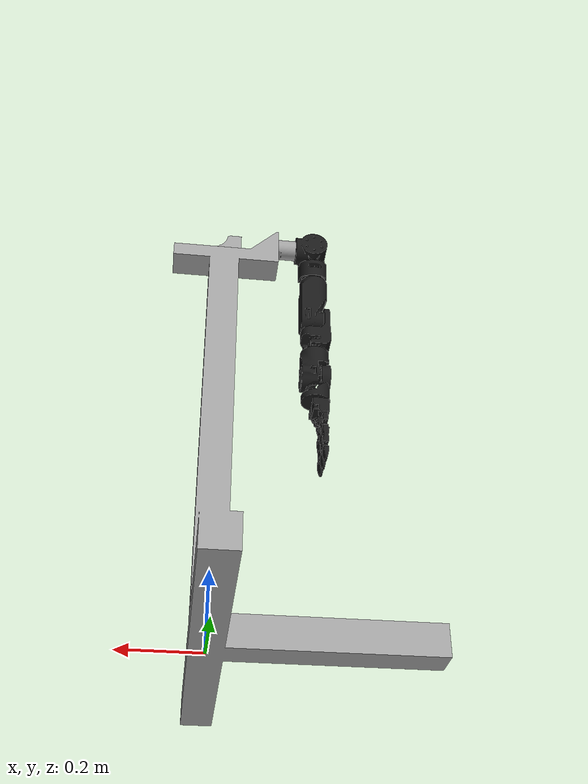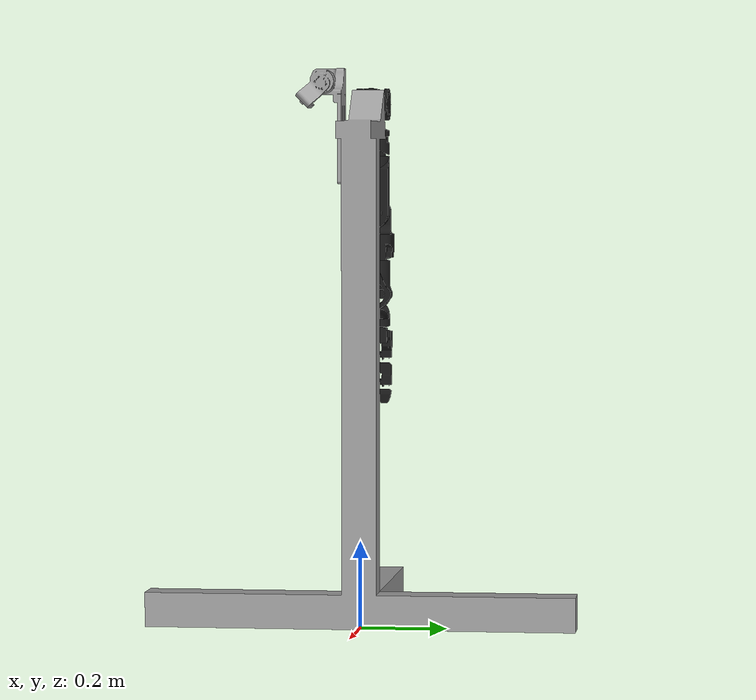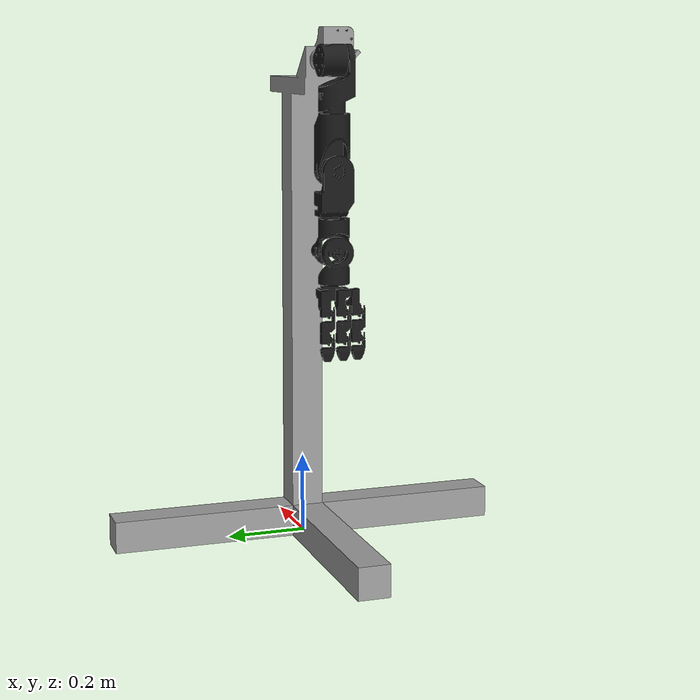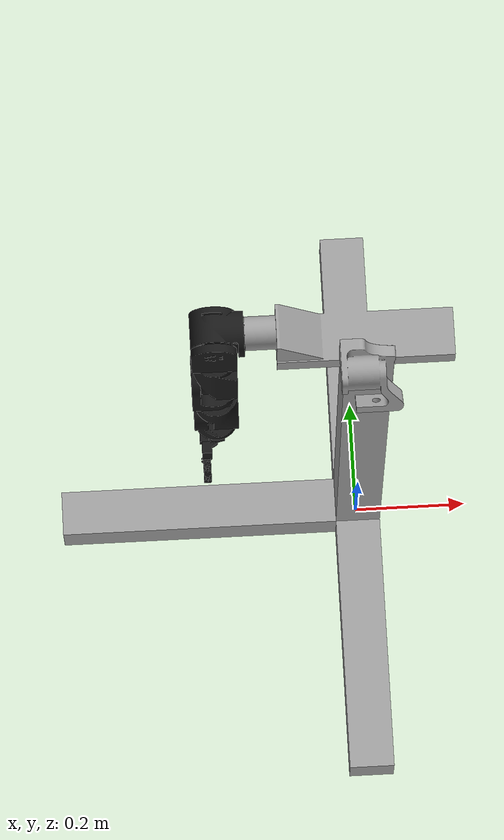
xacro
<?xml version="1.0"?>
<robot xmlns:xacro="http://www.ros.org/wiki/xacro" name="JAXV3_Assembly">

  <!-- Materials (shared across all assemblies) -->
  <material name="Steel">
    <color rgba="0.627 0.627 0.627 1.0"/>
  </material>
  <material name="Acetal_Resin_White">
    <color rgba="0.098 0.098 0.098 1.0"/>
  </material>
  <material name="Generic">
    <color rgba="0.098 0.098 0.098 1.0"/>
  </material>

  <!-- Assembly includes -->
  <xacro:include filename="$(find JAXV3_Assembly_description)/urdf/assemblies/JAXV3_Assembly.urdf.xacro"/>

  <!-- Instantiate assemblies -->
  <xacro:JAXV3_Assembly prefix=""/>

</robot>

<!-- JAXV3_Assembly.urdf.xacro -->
<robot xmlns:xacro="http://www.ros.org/wiki/xacro" name="JAXV3_Assembly_macro">

  <xacro:macro name="JAXV3_Assembly" params="prefix">

    <!-- Links -->
    <link name="${prefix}base_link">
      <inertial>
        <origin xyz="-0.055017 0.000000 0.331791" rpy="0 0 0"/>
        <mass value="137.266081"/>
        <inertia ixx="2.575008e+01" ixy="0.000000e+00" ixz="-1.895989e+00"
                 iyy="2.387286e+01" iyz="0.000000e+00" izz="6.588692e+00"/>
      </inertial>
      <visual>
        <origin xyz="0.000000 0.000000 0.000000" rpy="0.000000 0.000000 0.000000"/>
        <geometry>
          <mesh filename="package://JAXV3_Assembly_description/meshes/JAXV3_Assembly/base_link.dae" scale="1 1 1"/>
        </geometry>
        <material name="Steel"/>
      </visual>
      <collision>
        <origin xyz="0.000000 0.000000 0.000000" rpy="0.000000 0.000000 0.000000"/>
        <geometry>
          <mesh filename="package://JAXV3_Assembly_description/meshes/JAXV3_Assembly/base_link_collision.stl" scale="0.01 0.01 0.01"/>
        </geometry>
      </collision>
    </link>

    <link name="${prefix}Shoulder_Pitch_1">
      <inertial>
        <origin xyz="-0.025919 0.000000 0.000254" rpy="0 0 0"/>
        <mass value="0.945323"/>
        <inertia ixx="3.526088e-04" ixy="0.000000e+00" ixz="-4.945399e-06"
                 iyy="3.789174e-04" iyz="0.000000e+00" izz="3.842486e-04"/>
      </inertial>
      <visual>
        <origin xyz="0.000000 0.000000 0.000000" rpy="0.000000 0.000000 0.000000"/>
        <geometry>
          <mesh filename="package://JAXV3_Assembly_description/meshes/JAXV3_Assembly/Shoulder_Pitch_1.dae" scale="1 1 1"/>
        </geometry>
        <material name="Steel"/>
      </visual>
      <collision>
        <origin xyz="0.000000 0.000000 0.000000" rpy="0.000000 0.000000 0.000000"/>
        <geometry>
          <mesh filename="package://JAXV3_Assembly_description/meshes/JAXV3_Assembly/Shoulder_Pitch_1_collision.stl" scale="0.01 0.01 0.01"/>
        </geometry>
      </collision>
    </link>

    <link name="${prefix}Holder_1">
      <inertial>
        <origin xyz="0.191681 -0.014898 0.032704" rpy="0 0 0"/>
        <mass value="3.331140"/>
        <inertia ixx="1.734710e-02" ixy="1.486348e-03" ixz="-2.128939e-04"
                 iyy="4.873273e-03" iyz="-2.937509e-03" izz="1.666697e-02"/>
      </inertial>
      <visual>
        <origin xyz="0.000000 0.000000 0.000000" rpy="0.000000 0.000000 0.000000"/>
        <geometry>
          <mesh filename="package://JAXV3_Assembly_description/meshes/JAXV3_Assembly/Holder_1.dae" scale="1 1 1"/>
        </geometry>
        <material name="Steel"/>
      </visual>
      <collision>
        <origin xyz="0.000000 0.000000 0.000000" rpy="0.000000 0.000000 0.000000"/>
        <geometry>
          <mesh filename="package://JAXV3_Assembly_description/meshes/JAXV3_Assembly/Holder_1_collision.stl" scale="0.01 0.01 0.01"/>
        </geometry>
      </collision>
    </link>

    <link name="${prefix}Shoulder_Roll_1">
      <inertial>
        <origin xyz="0.006736 -0.000116 0.041627" rpy="0 0 0"/>
        <mass value="0.262799"/>
        <inertia ixx="2.438658e-04" ixy="4.725397e-07" ixz="-9.712209e-06"
                 iyy="2.386309e-04" iyz="2.560602e-07" izz="1.815925e-04"/>
      </inertial>
      <visual>
        <origin xyz="0.000000 0.000000 0.000000" rpy="1.570796 1.570796 0.000000"/>
        <geometry>
          <mesh filename="package://JAXV3_Assembly_description/meshes/JAXV3_Assembly/Shoulder_Roll_1.dae" scale="1 1 1"/>
        </geometry>
        <material name="Acetal_Resin_White"/>
      </visual>
      <collision>
        <origin xyz="0.000000 0.000000 0.000000" rpy="1.570796 1.570796 0.000000"/>
        <geometry>
          <mesh filename="package://JAXV3_Assembly_description/meshes/JAXV3_Assembly/Shoulder_Roll_1_collision.stl" scale="0.01 0.01 0.01"/>
        </geometry>
      </collision>
    </link>

    <link name="${prefix}Shoulder_Yaw_1">
      <inertial>
        <origin xyz="-0.000000 -0.066867 -0.014142" rpy="0 0 0"/>
        <mass value="0.320456"/>
        <inertia ixx="6.510216e-04" ixy="1.467003e-11" ixz="8.632501e-12"
                 iyy="2.696023e-04" iyz="-1.666095e-04" izz="6.394572e-04"/>
      </inertial>
      <visual>
        <origin xyz="0.000000 0.000000 0.004500" rpy="-1.570796 0.000000 0.000000"/>
        <geometry>
          <mesh filename="package://JAXV3_Assembly_description/meshes/JAXV3_Assembly/Shoulder_Yaw_1.dae" scale="1 1 1"/>
        </geometry>
        <material name="Acetal_Resin_White"/>
      </visual>
      <collision>
        <origin xyz="0.000000 0.000000 0.004500" rpy="-1.570796 0.000000 0.000000"/>
        <geometry>
          <mesh filename="package://JAXV3_Assembly_description/meshes/JAXV3_Assembly/Shoulder_Yaw_1_collision.stl" scale="0.01 0.01 0.01"/>
        </geometry>
      </collision>
    </link>

    <link name="${prefix}Upper_Arm_1">
      <inertial>
        <origin xyz="0.009753 0.000235 0.085336" rpy="0 0 0"/>
        <mass value="0.359402"/>
        <inertia ixx="1.105148e-03" ixy="-1.458579e-06" ixz="-4.585630e-05"
                 iyy="1.087478e-03" iyz="-3.741028e-06" izz="3.229561e-04"/>
      </inertial>
      <visual>
        <origin xyz="0.000000 0.000000 0.000000" rpy="3.141593 0.000000 0.000000"/>
        <geometry>
          <mesh filename="package://JAXV3_Assembly_description/meshes/JAXV3_Assembly/Upper_Arm_1.dae" scale="1 1 1"/>
        </geometry>
        <material name="Acetal_Resin_White"/>
      </visual>
      <collision>
        <origin xyz="0.000000 0.000000 0.000000" rpy="3.141593 0.000000 0.000000"/>
        <geometry>
          <mesh filename="package://JAXV3_Assembly_description/meshes/JAXV3_Assembly/Upper_Arm_1_collision.stl" scale="0.01 0.01 0.01"/>
        </geometry>
      </collision>
    </link>

    <link name="${prefix}Under_Arm_1">
      <inertial>
        <origin xyz="0.004585 0.057220 -0.010887" rpy="0 0 0"/>
        <mass value="0.331919"/>
        <inertia ixx="5.029360e-04" ixy="-3.480238e-05" ixz="8.832085e-06"
                 iyy="2.829254e-04" iyz="8.655003e-05" izz="5.239298e-04"/>
      </inertial>
      <visual>
        <origin xyz="0.000000 -0.000003 0.000000" rpy="1.570796 1.570796 0.000000"/>
        <geometry>
          <mesh filename="package://JAXV3_Assembly_description/meshes/JAXV3_Assembly/Under_Arm_1.dae" scale="1 1 1"/>
        </geometry>
        <material name="Acetal_Resin_White"/>
      </visual>
      <collision>
        <origin xyz="0.000000 -0.000003 0.000000" rpy="1.570796 1.570796 0.000000"/>
        <geometry>
          <mesh filename="package://JAXV3_Assembly_description/meshes/JAXV3_Assembly/Under_Arm_1_collision.stl" scale="0.01 0.01 0.01"/>
        </geometry>
      </collision>
    </link>

    <link name="${prefix}Wrist_Pitch_1">
      <inertial>
        <origin xyz="0.009082 -0.002213 0.042135" rpy="0 0 0"/>
        <mass value="0.189235"/>
        <inertia ixx="3.036172e-04" ixy="2.101562e-06" ixz="-3.435637e-05"
                 iyy="2.721912e-04" iyz="1.130097e-05" izz="1.661101e-04"/>
      </inertial>
      <visual>
        <origin xyz="0.000000 0.000000 0.000000" rpy="-3.141593 0.000000 0.000000"/>
        <geometry>
          <mesh filename="package://JAXV3_Assembly_description/meshes/JAXV3_Assembly/Wrist_Pitch_1.dae" scale="1 1 1"/>
        </geometry>
        <material name="Acetal_Resin_White"/>
      </visual>
      <collision>
        <origin xyz="0.000000 0.000000 0.000000" rpy="-3.141593 0.000000 0.000000"/>
        <geometry>
          <mesh filename="package://JAXV3_Assembly_description/meshes/JAXV3_Assembly/Wrist_Pitch_1_collision.stl" scale="0.01 0.01 0.01"/>
        </geometry>
      </collision>
    </link>

    <link name="${prefix}Wrist_yaw_1">
      <inertial>
        <origin xyz="-0.000000 0.032449 -0.004118" rpy="0 0 0"/>
        <mass value="0.145699"/>
        <inertia ixx="2.545399e-04" ixy="4.872936e-10" ixz="2.614622e-10"
                 iyy="1.103873e-04" iyz="6.162241e-05" izz="2.623350e-04"/>
      </inertial>
      <visual>
        <origin xyz="0.000000 0.000000 0.000000" rpy="1.570796 1.570796 0.000000"/>
        <geometry>
          <mesh filename="package://JAXV3_Assembly_description/meshes/JAXV3_Assembly/Wrist_yaw_1.dae" scale="1 1 1"/>
        </geometry>
        <material name="Acetal_Resin_White"/>
      </visual>
      <collision>
        <origin xyz="0.000000 0.000000 0.000000" rpy="1.570796 1.570796 0.000000"/>
        <geometry>
          <mesh filename="package://JAXV3_Assembly_description/meshes/JAXV3_Assembly/Wrist_yaw_1_collision.stl" scale="0.01 0.01 0.01"/>
        </geometry>
      </collision>
    </link>

    <link name="${prefix}MG996R_1">
      <inertial>
        <origin xyz="-0.010774 0.005867 -0.032163" rpy="0 0 0"/>
        <mass value="0.099465"/>
        <inertia ixx="7.803347e-05" ixy="1.050235e-06" ixz="-8.745155e-06"
                 iyy="4.395029e-05" iyz="2.492857e-06" izz="5.885032e-05"/>
      </inertial>
      <visual>
        <origin xyz="-0.013500 0.009165 -0.053571" rpy="-3.141593 1.570796 0.000000"/>
        <geometry>
          <mesh filename="package://JAXV3_Assembly_description/meshes/JAXV3_Assembly/MG996R_1.dae" scale="1 1 1"/>
        </geometry>
        <material name="Generic"/>
      </visual>
      <collision>
        <origin xyz="-0.013500 0.009165 -0.053571" rpy="-3.141593 1.570796 0.000000"/>
        <geometry>
          <mesh filename="package://JAXV3_Assembly_description/meshes/JAXV3_Assembly/MG996R_1_collision.stl" scale="0.01 0.01 0.01"/>
        </geometry>
      </collision>
    </link>

    <link name="${prefix}RotationBody_1">
      <inertial>
        <origin xyz="-0.019866 0.021115 0.000775" rpy="0 0 0"/>
        <mass value="0.023314"/>
        <inertia ixx="8.864326e-06" ixy="2.066119e-07" ixz="6.097483e-08"
                 iyy="7.945382e-06" iyz="-7.658235e-07" izz="2.101975e-06"/>
      </inertial>
      <visual>
        <origin xyz="0.015500 0.034603 0.010897" rpy="-3.141593 -1.570796 0.000000"/>
        <geometry>
          <mesh filename="package://JAXV3_Assembly_description/meshes/JAXV3_Assembly/RotationBody_1.dae" scale="1 1 1"/>
        </geometry>
        <material name="Acetal_Resin_White"/>
      </visual>
      <collision>
        <origin xyz="0.015500 0.034603 0.010897" rpy="-3.141593 -1.570796 0.000000"/>
        <geometry>
          <mesh filename="package://JAXV3_Assembly_description/meshes/JAXV3_Assembly/RotationBody_1_collision.stl" scale="0.01 0.01 0.01"/>
        </geometry>
      </collision>
    </link>

    <link name="${prefix}Finger_1_1_1">
      <inertial>
        <origin xyz="-0.000017 -0.041052 -0.016849" rpy="0 0 0"/>
        <mass value="0.020271"/>
        <inertia ixx="7.911076e-06" ixy="4.618794e-09" ixz="-2.310812e-09"
                 iyy="2.084078e-06" iyz="-1.150961e-06" izz="6.364432e-06"/>
      </inertial>
      <visual>
        <origin xyz="0.006500 0.015250 -0.042800" rpy="1.570796 0.000000 -1.570796"/>
        <geometry>
          <mesh filename="package://JAXV3_Assembly_description/meshes/JAXV3_Assembly/Finger_1_1_1.dae" scale="1 1 1"/>
        </geometry>
        <material name="Acetal_Resin_White"/>
      </visual>
      <collision>
        <origin xyz="0.006500 0.015250 -0.042800" rpy="1.570796 0.000000 -1.570796"/>
        <geometry>
          <mesh filename="package://JAXV3_Assembly_description/meshes/JAXV3_Assembly/Finger_1_1_1_collision.stl" scale="0.01 0.01 0.01"/>
        </geometry>
      </collision>
    </link>

    <link name="${prefix}Finger_2_1_1">
      <inertial>
        <origin xyz="-0.000017 -0.041052 -0.016849" rpy="0 0 0"/>
        <mass value="0.020271"/>
        <inertia ixx="7.911077e-06" ixy="4.618794e-09" ixz="-2.310714e-09"
                 iyy="2.084078e-06" iyz="-1.150960e-06" izz="6.364432e-06"/>
      </inertial>
      <visual>
        <origin xyz="0.006500 0.015250 -0.005800" rpy="1.570796 0.000000 -1.570796"/>
        <geometry>
          <mesh filename="package://JAXV3_Assembly_description/meshes/JAXV3_Assembly/Finger_2_1_1.dae" scale="1 1 1"/>
        </geometry>
        <material name="Acetal_Resin_White"/>
      </visual>
      <collision>
        <origin xyz="0.006500 0.015250 -0.005800" rpy="1.570796 0.000000 -1.570796"/>
        <geometry>
          <mesh filename="package://JAXV3_Assembly_description/meshes/JAXV3_Assembly/Finger_2_1_1_collision.stl" scale="0.01 0.01 0.01"/>
        </geometry>
      </collision>
    </link>

    <link name="${prefix}Finger_3_1_1">
      <inertial>
        <origin xyz="-0.000017 -0.041052 -0.016849" rpy="0 0 0"/>
        <mass value="0.020271"/>
        <inertia ixx="7.911077e-06" ixy="4.619483e-09" ixz="-2.310653e-09"
                 iyy="2.084078e-06" iyz="-1.150960e-06" izz="6.364432e-06"/>
      </inertial>
      <visual>
        <origin xyz="0.036500 0.015250 -0.010815" rpy="-1.570796 0.000000 -1.570796"/>
        <geometry>
          <mesh filename="package://JAXV3_Assembly_description/meshes/JAXV3_Assembly/Finger_3_1_1.dae" scale="1 1 1"/>
        </geometry>
        <material name="Acetal_Resin_White"/>
      </visual>
      <collision>
        <origin xyz="0.036500 0.015250 -0.010815" rpy="-1.570796 0.000000 -1.570796"/>
        <geometry>
          <mesh filename="package://JAXV3_Assembly_description/meshes/JAXV3_Assembly/Finger_3_1_1_collision.stl" scale="0.01 0.01 0.01"/>
        </geometry>
      </collision>
    </link>

    <link name="${prefix}Finger_1_2_1">
      <inertial>
        <origin xyz="0.000000 -0.027873 -0.014105" rpy="0 0 0"/>
        <mass value="0.011312"/>
        <inertia ixx="2.212028e-06" ixy="0.000000e+00" ixz="0.000000e+00"
                 iyy="1.076266e-06" iyz="-3.114506e-07" izz="1.397398e-06"/>
      </inertial>
      <visual>
        <origin xyz="0.006738 0.079682 -0.043102" rpy="1.570796 0.000000 -1.570796"/>
        <geometry>
          <mesh filename="package://JAXV3_Assembly_description/meshes/JAXV3_Assembly/Finger_1_2_1.dae" scale="1 1 1"/>
        </geometry>
        <material name="Acetal_Resin_White"/>
      </visual>
      <collision>
        <origin xyz="0.006738 0.079682 -0.043102" rpy="1.570796 0.000000 -1.570796"/>
        <geometry>
          <mesh filename="package://JAXV3_Assembly_description/meshes/JAXV3_Assembly/Finger_1_2_1_collision.stl" scale="0.01 0.01 0.01"/>
        </geometry>
      </collision>
    </link>

    <link name="${prefix}Finger_2_2_1">
      <inertial>
        <origin xyz="0.000000 -0.027873 -0.014105" rpy="0 0 0"/>
        <mass value="0.011312"/>
        <inertia ixx="2.212028e-06" ixy="0.000000e+00" ixz="0.000000e+00"
                 iyy="1.076266e-06" iyz="-3.114506e-07" izz="1.397398e-06"/>
      </inertial>
      <visual>
        <origin xyz="0.006500 0.080250 -0.005800" rpy="1.570796 0.000000 -1.570796"/>
        <geometry>
          <mesh filename="package://JAXV3_Assembly_description/meshes/JAXV3_Assembly/Finger_2_2_1.dae" scale="1 1 1"/>
        </geometry>
        <material name="Acetal_Resin_White"/>
      </visual>
      <collision>
        <origin xyz="0.006500 0.080250 -0.005800" rpy="1.570796 0.000000 -1.570796"/>
        <geometry>
          <mesh filename="package://JAXV3_Assembly_description/meshes/JAXV3_Assembly/Finger_2_2_1_collision.stl" scale="0.01 0.01 0.01"/>
        </geometry>
      </collision>
    </link>

    <link name="${prefix}Finger_3_2_1">
      <inertial>
        <origin xyz="0.000000 -0.027873 -0.014105" rpy="0 0 0"/>
        <mass value="0.011312"/>
        <inertia ixx="2.212028e-06" ixy="0.000000e+00" ixz="0.000000e+00"
                 iyy="1.076266e-06" iyz="-3.114506e-07" izz="1.397398e-06"/>
      </inertial>
      <visual>
        <origin xyz="0.036500 0.080250 -0.010815" rpy="-1.570796 0.000000 -1.570796"/>
        <geometry>
          <mesh filename="package://JAXV3_Assembly_description/meshes/JAXV3_Assembly/Finger_3_2_1.dae" scale="1 1 1"/>
        </geometry>
        <material name="Acetal_Resin_White"/>
      </visual>
      <collision>
        <origin xyz="0.036500 0.080250 -0.010815" rpy="-1.570796 0.000000 -1.570796"/>
        <geometry>
          <mesh filename="package://JAXV3_Assembly_description/meshes/JAXV3_Assembly/Finger_3_2_1_collision.stl" scale="0.01 0.01 0.01"/>
        </geometry>
      </collision>
    </link>

    <!-- Joints (internal to assembly) -->
    <joint name="${prefix}base_link_to_shoulder_pitch" type="fixed">
      <parent link="${prefix}base_link"/>
      <child link="${prefix}Shoulder_Pitch_1"/>
      <origin xyz="-0.150000 0.000000 1.212500" rpy="0.000000 0.000000 0.000000"/>
    </joint>

    <joint name="${prefix}base_link_to_holder" type="fixed">
      <parent link="${prefix}base_link"/>
      <child link="${prefix}Holder_1"/>
      <origin xyz="-0.200000 -0.040000 1.232000" rpy="1.570796 0.000000 0.000000"/>
    </joint>

    <joint name="${prefix}shoulder_pitch_to_shoulder_roll" type="revolute">
      <parent link="${prefix}Shoulder_Pitch_1"/>
      <child link="${prefix}Shoulder_Roll_1"/>
      <origin xyz="-0.052000 0.000000 0.000000" rpy="-1.570796 0.000000 1.570796"/>
      <axis xyz="0.000000 0.000000 1.000000"/>
      <limit lower="-0.785398" upper="0.785398" effort="100.0" velocity="1.00"/>
    </joint>

    <joint name="${prefix}shoulder_roll_to_shoulder_yaw" type="revolute">
      <parent link="${prefix}Shoulder_Roll_1"/>
      <child link="${prefix}Shoulder_Yaw_1"/>
      <origin xyz="-0.024500 0.000000 0.050000" rpy="-3.141593 1.570796 0.000000"/>
      <axis xyz="0.000000 0.000000 1.000000"/>
      <limit lower="-0.872665" upper="0.000000" effort="100.0" velocity="1.00"/>
    </joint>

    <joint name="${prefix}shoulder_yaw_to_upper_arm" type="revolute">
      <parent link="${prefix}Shoulder_Yaw_1"/>
      <child link="${prefix}Upper_Arm_1"/>
      <origin xyz="0.000000 -0.127000 -0.025500" rpy="1.570796 0.000000 0.000000"/>
      <axis xyz="0.000000 0.000000 1.000000"/>
      <limit lower="-1.570796" upper="4.188790" effort="100.0" velocity="1.00"/>
    </joint>

    <joint name="${prefix}upper_arm_to_under_arm" type="revolute">
      <parent link="${prefix}Upper_Arm_1"/>
      <child link="${prefix}Under_Arm_1"/>
      <origin xyz="-0.024500 -0.000208 0.129792" rpy="1.570796 0.000000 -1.570796"/>
      <axis xyz="0.000000 0.000000 1.000000"/>
      <limit lower="-1.745329" upper="1.745329" effort="100.0" velocity="1.00"/>
    </joint>

    <joint name="${prefix}under_arm_to_wrist_pitch" type="revolute">
      <parent link="${prefix}Under_Arm_1"/>
      <child link="${prefix}Wrist_Pitch_1"/>
      <origin xyz="0.000000 0.121797 -0.024500" rpy="-1.570796 1.570796 0.000000"/>
      <axis xyz="0.000000 0.000000 1.000000"/>
      <limit lower="-1.570796" upper="1.570796" effort="100.0" velocity="1.00"/>
    </joint>

    <joint name="${prefix}wrist_pitch_to_wrist_yaw" type="revolute">
      <parent link="${prefix}Wrist_Pitch_1"/>
      <child link="${prefix}Wrist_yaw_1"/>
      <origin xyz="-0.020000 0.000000 0.070200" rpy="1.570796 0.000000 -1.570796"/>
      <axis xyz="0.000000 0.000000 1.000000"/>
      <limit lower="-1.570796" upper="1.570796" effort="100.0" velocity="1.00"/>
    </joint>

    <joint name="${prefix}wrist_yaw_to_hand_base" type="revolute">
      <parent link="${prefix}Wrist_yaw_1"/>
      <child link="${prefix}MG996R_1"/>
      <origin xyz="0.000000 0.077000 -0.020000" rpy="1.570796 1.570796 0.000000"/>
      <axis xyz="0.000000 0.000000 1.000000"/>
      <limit lower="-2.094395" upper="2.094395" effort="100.0" velocity="1.00"/>
    </joint>

    <joint name="${prefix}hand_base_to_rotation_base" type="revolute">
      <parent link="${prefix}MG996R_1"/>
      <child link="${prefix}RotationBody_1"/>
      <origin xyz="0.002087 -0.025561 -0.042240" rpy="3.141593 0.000000 0.000000"/>
      <axis xyz="0.000000 0.000000 1.000000"/>
      <limit lower="-3.141593" upper="0.000000" effort="100.0" velocity="1.00"/>
    </joint>

    <joint name="${prefix}hand_base_to_finger_1_1" type="revolute">
      <parent link="${prefix}MG996R_1"/>
      <child link="${prefix}Finger_1_1_1"/>
      <origin xyz="-0.020000 -0.033335 -0.068804" rpy="1.570796 0.000000 0.000000"/>
      <axis xyz="0.000000 0.000000 1.000000"/>
      <limit lower="-1.570796" upper="1.570796" effort="100.0" velocity="1.00"/>
    </joint>

    <joint name="${prefix}hand_base_to_finger_2_1" type="revolute">
      <parent link="${prefix}MG996R_1"/>
      <child link="${prefix}Finger_2_1_1"/>
      <origin xyz="-0.020000 0.006665 -0.068821" rpy="1.570796 0.000000 0.000000"/>
      <axis xyz="0.000000 0.000000 1.000000"/>
      <limit lower="-1.570796" upper="1.570796" effort="100.0" velocity="1.00"/>
    </joint>

    <joint name="${prefix}rotation_base_to_finger_3_1" type="revolute">
      <parent link="${prefix}RotationBody_1"/>
      <child link="${prefix}Finger_3_1_1"/>
      <origin xyz="-0.021000 0.044775 0.026147" rpy="-1.570796 0.000000 0.000000"/>
      <axis xyz="0.000000 0.000000 1.000000"/>
      <limit lower="-1.570796" upper="1.570796" effort="100.0" velocity="1.00"/>
    </joint>

    <joint name="${prefix}finger_1_1_to_finger_1_2" type="revolute">
      <parent link="${prefix}Finger_1_1_1"/>
      <child link="${prefix}Finger_1_2_1"/>
      <origin xyz="0.000000 -0.065000 -0.000300" rpy="0.000000 0.000000 0.000000"/>
      <axis xyz="0.000000 0.000000 1.000000"/>
      <limit lower="0.000000" upper="2.094395" effort="100.0" velocity="1.00"/>
    </joint>

    <joint name="${prefix}finger_1_2_to_finger_2_2" type="revolute">
      <parent link="${prefix}Finger_2_1_1"/>
      <child link="${prefix}Finger_2_2_1"/>
      <origin xyz="0.000000 -0.065000 -0.000300" rpy="0.000000 0.000000 0.000000"/>
      <axis xyz="0.000000 0.000000 1.000000"/>
      <limit lower="0.000000" upper="2.094395" effort="100.0" velocity="1.00"/>
    </joint>

    <joint name="${prefix}finger_3_1_to_finger_3_2" type="revolute">
      <parent link="${prefix}Finger_3_1_1"/>
      <child link="${prefix}Finger_3_2_1"/>
      <origin xyz="0.000000 -0.065000 -0.000300" rpy="0.000000 0.000000 0.000000"/>
      <axis xyz="0.000000 0.000000 1.000000"/>
      <limit lower="0.000000" upper="2.094395" effort="100.0" velocity="1.00"/>
    </joint>

    <!-- ROS 2 control: generated generic system -->
    <ros2_control name="${prefix}JAXV3_Assembly_system" type="system">
      <hardware>
        <plugin>mock_components/GenericSystem</plugin>
        <param name="cmd_topic">sim/JAXV3_Assembly_system/cmd</param>
        <param name="state_topic">sim/JAXV3_Assembly_system/state</param>
      </hardware>

      <joint name="${prefix}finger_1_1_to_finger_1_2">
        <command_interface name="position"/>
        <command_interface name="velocity"/>
        <state_interface name="position">
          <param name="initial_value">0.0</param>
        </state_interface>
        <state_interface name="velocity"/>
        <state_interface name="effort"/>
      </joint>
      <joint name="${prefix}finger_1_2_to_finger_2_2">
        <command_interface name="position"/>
        <command_interface name="velocity"/>
        <state_interface name="position">
          <param name="initial_value">0.0</param>
        </state_interface>
        <state_interface name="velocity"/>
        <state_interface name="effort"/>
      </joint>
      <joint name="${prefix}finger_3_1_to_finger_3_2">
        <command_interface name="position"/>
        <command_interface name="velocity"/>
        <state_interface name="position">
          <param name="initial_value">0.0</param>
        </state_interface>
        <state_interface name="velocity"/>
        <state_interface name="effort"/>
      </joint>
      <joint name="${prefix}hand_base_to_finger_1_1">
        <command_interface name="position"/>
        <command_interface name="velocity"/>
        <state_interface name="position">
          <param name="initial_value">0.0</param>
        </state_interface>
        <state_interface name="velocity"/>
        <state_interface name="effort"/>
      </joint>
      <joint name="${prefix}hand_base_to_finger_2_1">
        <command_interface name="position"/>
        <command_interface name="velocity"/>
        <state_interface name="position">
          <param name="initial_value">0.0</param>
        </state_interface>
        <state_interface name="velocity"/>
        <state_interface name="effort"/>
      </joint>
      <joint name="${prefix}hand_base_to_rotation_base">
        <command_interface name="position"/>
        <command_interface name="velocity"/>
        <state_interface name="position">
          <param name="initial_value">0.0</param>
        </state_interface>
        <state_interface name="velocity"/>
        <state_interface name="effort"/>
      </joint>
      <joint name="${prefix}rotation_base_to_finger_3_1">
        <command_interface name="position"/>
        <command_interface name="velocity"/>
        <state_interface name="position">
          <param name="initial_value">0.0</param>
        </state_interface>
        <state_interface name="velocity"/>
        <state_interface name="effort"/>
      </joint>
      <joint name="${prefix}shoulder_pitch_to_shoulder_roll">
        <command_interface name="position"/>
        <command_interface name="velocity"/>
        <state_interface name="position">
          <param name="initial_value">0.0</param>
        </state_interface>
        <state_interface name="velocity"/>
        <state_interface name="effort"/>
      </joint>
      <joint name="${prefix}shoulder_roll_to_shoulder_yaw">
        <command_interface name="position"/>
        <command_interface name="velocity"/>
        <state_interface name="position">
          <param name="initial_value">0.0</param>
        </state_interface>
        <state_interface name="velocity"/>
        <state_interface name="effort"/>
      </joint>
      <joint name="${prefix}shoulder_yaw_to_upper_arm">
        <command_interface name="position"/>
        <command_interface name="velocity"/>
        <state_interface name="position">
          <param name="initial_value">0.0</param>
        </state_interface>
        <state_interface name="velocity"/>
        <state_interface name="effort"/>
      </joint>
      <joint name="${prefix}under_arm_to_wrist_pitch">
        <command_interface name="position"/>
        <command_interface name="velocity"/>
        <state_interface name="position">
          <param name="initial_value">0.0</param>
        </state_interface>
        <state_interface name="velocity"/>
        <state_interface name="effort"/>
      </joint>
      <joint name="${prefix}upper_arm_to_under_arm">
        <command_interface name="position"/>
        <command_interface name="velocity"/>
        <state_interface name="position">
          <param name="initial_value">0.0</param>
        </state_interface>
        <state_interface name="velocity"/>
        <state_interface name="effort"/>
      </joint>
      <joint name="${prefix}wrist_pitch_to_wrist_yaw">
        <command_interface name="position"/>
        <command_interface name="velocity"/>
        <state_interface name="position">
          <param name="initial_value">0.0</param>
        </state_interface>
        <state_interface name="velocity"/>
        <state_interface name="effort"/>
      </joint>
      <joint name="${prefix}wrist_yaw_to_hand_base">
        <command_interface name="position"/>
        <command_interface name="velocity"/>
        <state_interface name="position">
          <param name="initial_value">0.0</param>
        </state_interface>
        <state_interface name="velocity"/>
        <state_interface name="effort"/>
      </joint>
    </ros2_control>

  </xacro:macro>

</robot>
